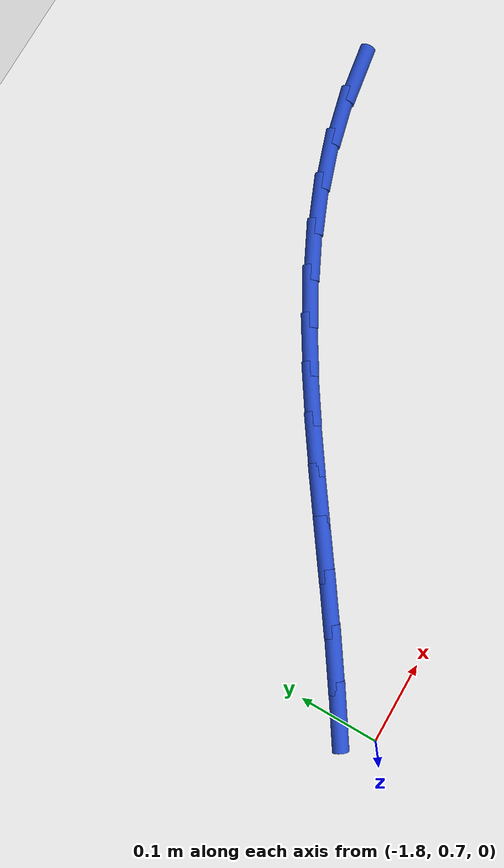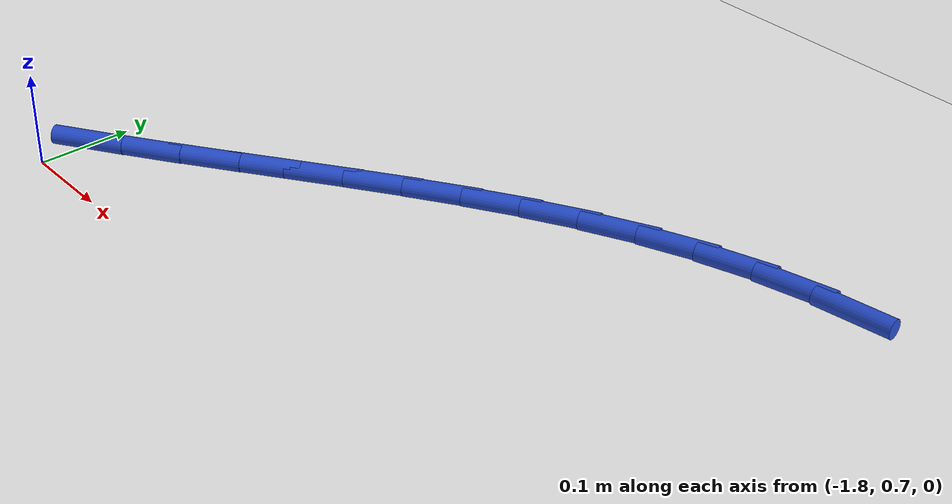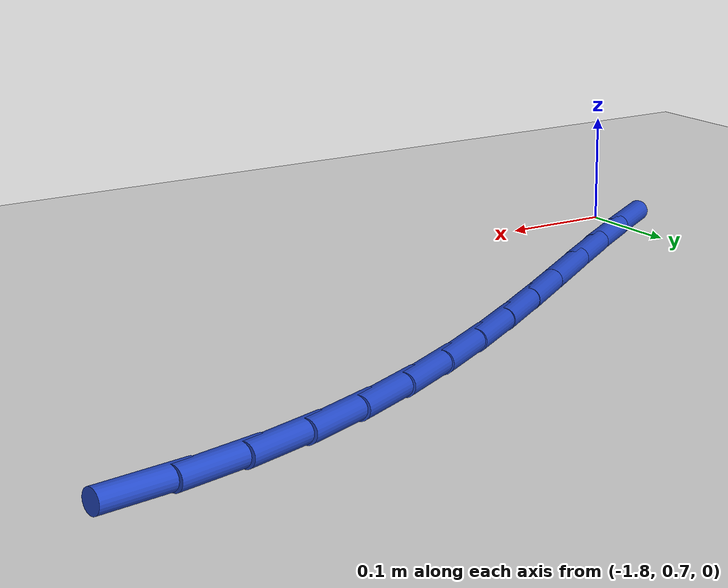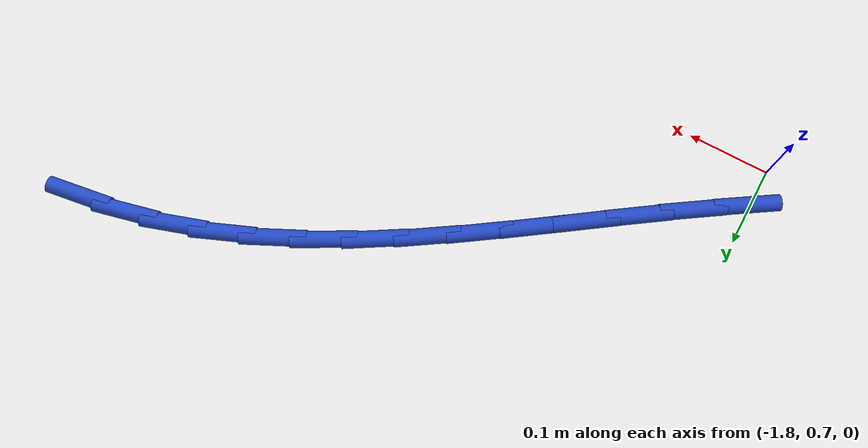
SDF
<sdf version="1.6">
 <world name="default">
  <model name="ground_plane">
   <static>1</static>
   <link name="link">
    <collision name="collision">
     <geometry><plane><normal>0 0 1</normal><size>100 100</size></plane></geometry>
     <surface><friction><ode><mu>100</mu><mu2>50</mu2></ode></friction></surface>
    </collision>
    <visual name="visual">
     <cast_shadows>0</cast_shadows>
     <geometry><plane><normal>0 0 1</normal><size>100 100</size></plane></geometry>
     <material>
      <script><uri>file://media/materials/scripts/gazebo.material</uri><name>Gazebo/WhiteGlow</name></script>
     </material>
    </visual>
   </link>
  </model>
  <model name="line">
   <link name="link_28">
    <pose>-1.0923889774915518 1.123856292427328 0.01 0 1.57 0.1560641013292504</pose>
    <collision name="collision">
     <geometry><cylinder><radius>0.01</radius><length>0.08</length></cylinder></geometry>
    </collision>
    <visual name="visual">
     <material>
      <script><name>Gazebo/Blue</name><uri>file://media/materials/scripts/gazebo.material</uri></script>
     </material>
     <geometry><cylinder><radius>0.01</radius><length>0.08</length></cylinder></geometry>
    </visual>
   </link>
   <link name="link_29">
    <pose>-1.1523397238179047 1.1144234261305912 0.01 0 1.57 0.24302678974342481</pose>
    <collision name="collision">
     <geometry><cylinder><radius>0.01</radius><length>0.08</length></cylinder></geometry>
    </collision>
    <visual name="visual">
     <material>
      <script><name>Gazebo/Blue</name><uri>file://media/materials/scripts/gazebo.material</uri></script>
     </material>
     <geometry><cylinder><radius>0.01</radius><length>0.08</length></cylinder></geometry>
    </visual>
   </link>
   <link name="link_30">
    <pose>-1.2104423574861922 1.100018206142003 0.01 0 1.57 0.325197268333377</pose>
    <collision name="collision">
     <geometry><cylinder><radius>0.01</radius><length>0.08</length></cylinder></geometry>
    </collision>
    <visual name="visual">
     <material>
      <script><name>Gazebo/Blue</name><uri>file://media/materials/scripts/gazebo.material</uri></script>
     </material>
     <geometry><cylinder><radius>0.01</radius><length>0.08</length></cylinder></geometry>
    </visual>
   </link>
   <link name="link_31">
    <pose>-1.2667845144363135 1.081021465562106 0.01 0 1.57 0.3980357926644052</pose>
    <collision name="collision">
     <geometry><cylinder><radius>0.01</radius><length>0.08</length></cylinder></geometry>
    </collision>
    <visual name="visual">
     <material>
      <script><name>Gazebo/Blue</name><uri>file://media/materials/scripts/gazebo.material</uri></script>
     </material>
     <geometry><cylinder><radius>0.01</radius><length>0.08</length></cylinder></geometry>
    </visual>
   </link>
   <link name="link_32">
    <pose>-1.3216424619412863 1.0579548056986017 0.01 0 1.57 0.46050750811418706</pose>
    <collision name="collision">
     <geometry><cylinder><radius>0.01</radius><length>0.08</length></cylinder></geometry>
    </collision>
    <visual name="visual">
     <material>
      <script><name>Gazebo/Blue</name><uri>file://media/materials/scripts/gazebo.material</uri></script>
     </material>
     <geometry><cylinder><radius>0.01</radius><length>0.08</length></cylinder></geometry>
    </visual>
   </link>
   <link name="link_33">
    <pose>-1.3752926514358916 1.0313399652919302 0.01 0 1.57 0.5122008303138049</pose>
    <collision name="collision">
     <geometry><cylinder><radius>0.01</radius><length>0.08</length></cylinder></geometry>
    </collision>
    <visual name="visual">
     <material>
      <script><name>Gazebo/Blue</name><uri>file://media/materials/scripts/gazebo.material</uri></script>
     </material>
     <geometry><cylinder><radius>0.01</radius><length>0.08</length></cylinder></geometry>
    </visual>
   </link>
   <link name="link_34">
    <pose>-1.428011534354909 1.0016986830825334 0.01 0 1.57 0.5531384781696758</pose>
    <collision name="collision">
     <geometry><cylinder><radius>0.01</radius><length>0.08</length></cylinder></geometry>
    </collision>
    <visual name="visual">
     <material>
      <script><name>Gazebo/Blue</name><uri>file://media/materials/scripts/gazebo.material</uri></script>
     </material>
     <geometry><cylinder><radius>0.01</radius><length>0.08</length></cylinder></geometry>
    </visual>
   </link>
   <link name="link_35">
    <pose>-1.4800755621331185 0.969552697810852 0.01 0 1.57 0.5835945073811567</pose>
    <collision name="collision">
     <geometry><cylinder><radius>0.01</radius><length>0.08</length></cylinder></geometry>
    </collision>
    <visual name="visual">
     <material>
      <script><name>Gazebo/Blue</name><uri>file://media/materials/scripts/gazebo.material</uri></script>
     </material>
     <geometry><cylinder><radius>0.01</radius><length>0.08</length></cylinder></geometry>
    </visual>
   </link>
   <link name="link_36">
    <pose>-1.5317611862053013 0.9354237482173275 0.01 0 1.57 0.6039493778100739</pose>
    <collision name="collision">
     <geometry><cylinder><radius>0.01</radius><length>0.08</length></cylinder></geometry>
    </collision>
    <visual name="visual">
     <material>
      <script><name>Gazebo/Blue</name><uri>file://media/materials/scripts/gazebo.material</uri></script>
     </material>
     <geometry><cylinder><radius>0.01</radius><length>0.08</length></cylinder></geometry>
    </visual>
   </link>
   <link name="link_37">
    <pose>-1.5833448580062375 0.899833573042401 0.01 0 1.57 0.6145917987495692</pose>
    <collision name="collision">
     <geometry><cylinder><radius>0.01</radius><length>0.08</length></cylinder></geometry>
    </collision>
    <visual name="visual">
     <material>
      <script><name>Gazebo/Blue</name><uri>file://media/materials/scripts/gazebo.material</uri></script>
     </material>
     <geometry><cylinder><radius>0.01</radius><length>0.08</length></cylinder></geometry>
    </visual>
   </link>
   <link name="link_38">
    <pose>-1.6351030289707063 0.8633039110265134 0.01 0 1.57 0.6158625038681865</pose>
    <collision name="collision">
     <geometry><cylinder><radius>0.01</radius><length>0.08</length></cylinder></geometry>
    </collision>
    <visual name="visual">
     <material>
      <script><name>Gazebo/Blue</name><uri>file://media/materials/scripts/gazebo.material</uri></script>
     </material>
     <geometry><cylinder><radius>0.01</radius><length>0.08</length></cylinder></geometry>
    </visual>
   </link>
   <link name="link_39">
    <pose>-1.6873121505334896 0.8263565009101062 0.01 0 1.57 0.6080312503753373</pose>
    <collision name="collision">
     <geometry><cylinder><radius>0.01</radius><length>0.08</length></cylinder></geometry>
    </collision>
    <visual name="visual">
     <material>
      <script><name>Gazebo/Blue</name><uri>file://media/materials/scripts/gazebo.material</uri></script>
     </material>
     <geometry><cylinder><radius>0.01</radius><length>0.08</length></cylinder></geometry>
    </visual>
   </link>
   <link name="link_40">
    <pose>-1.7402486741293663 0.7895130814336204 0.01 0 1.57 0.591670346823849</pose>
    <collision name="collision">
     <geometry><cylinder><radius>0.01</radius><length>0.08</length></cylinder></geometry>
    </collision>
    <visual name="visual">
     <material>
      <script><name>Gazebo/Blue</name><uri>file://media/materials/scripts/gazebo.material</uri></script>
     </material>
     <geometry><cylinder><radius>0.01</radius><length>0.08</length></cylinder></geometry>
    </visual>
   </link>
   <link name="link_41">
    <pose>-1.7941693691206104 0.7532795861163045 0.01 0 1.57 0.5787190899280037</pose>
    <collision name="collision">
     <geometry><cylinder><radius>0.01</radius><length>0.08</length></cylinder></geometry>
    </collision>
    <visual name="visual">
     <material>
      <script><name>Gazebo/Blue</name><uri>file://media/materials/scripts/gazebo.material</uri></script>
     </material>
     <geometry><cylinder><radius>0.01</radius><length>0.08</length></cylinder></geometry>
    </visual>
   </link>
  </model>
 </world>
</sdf>
